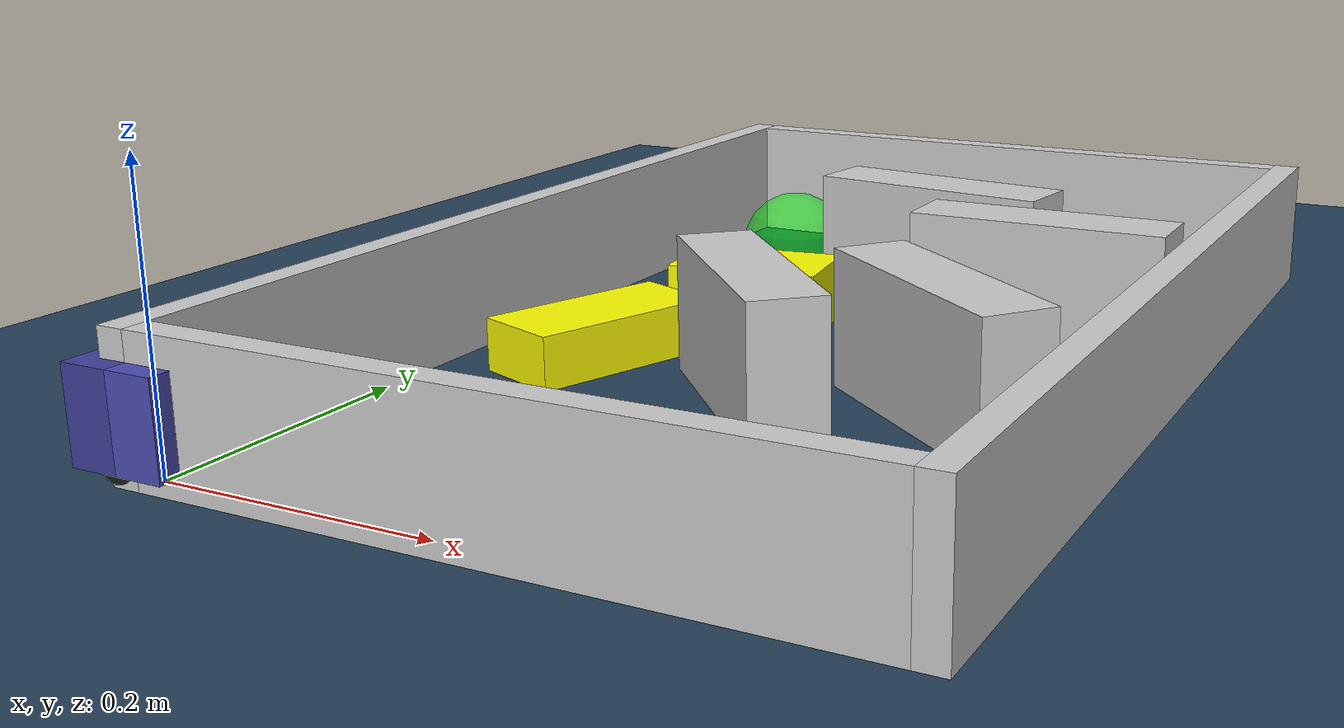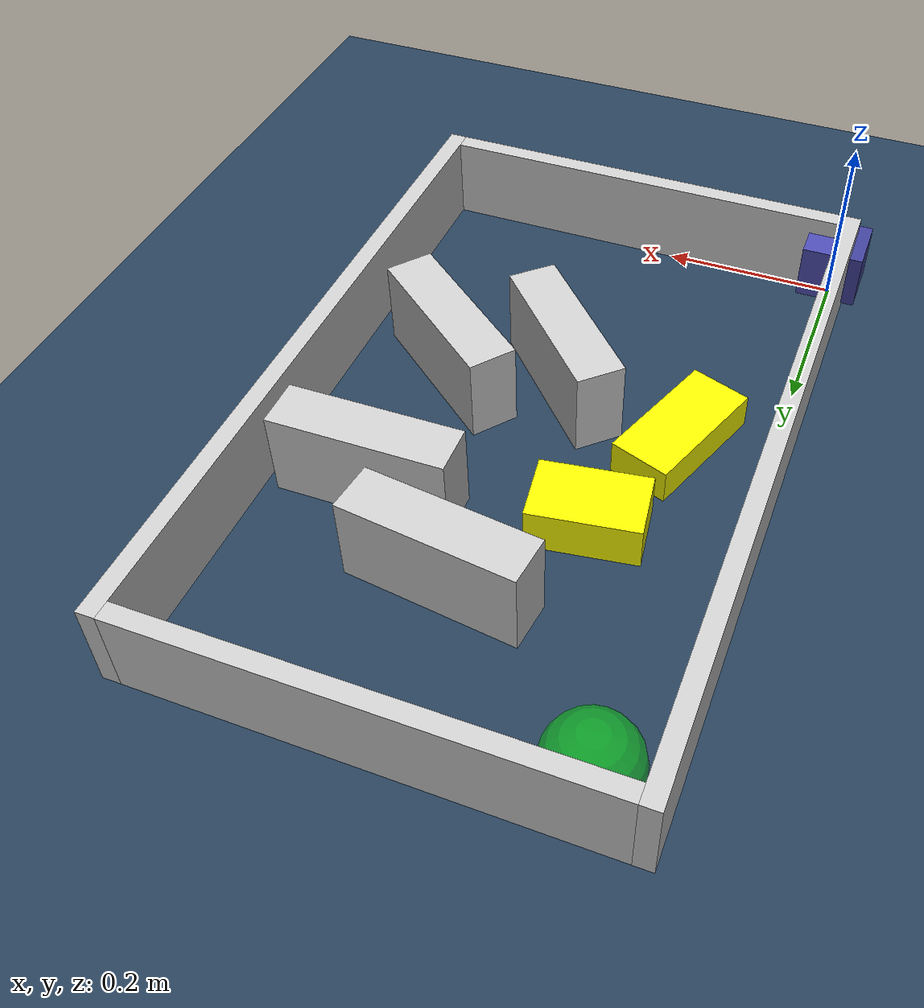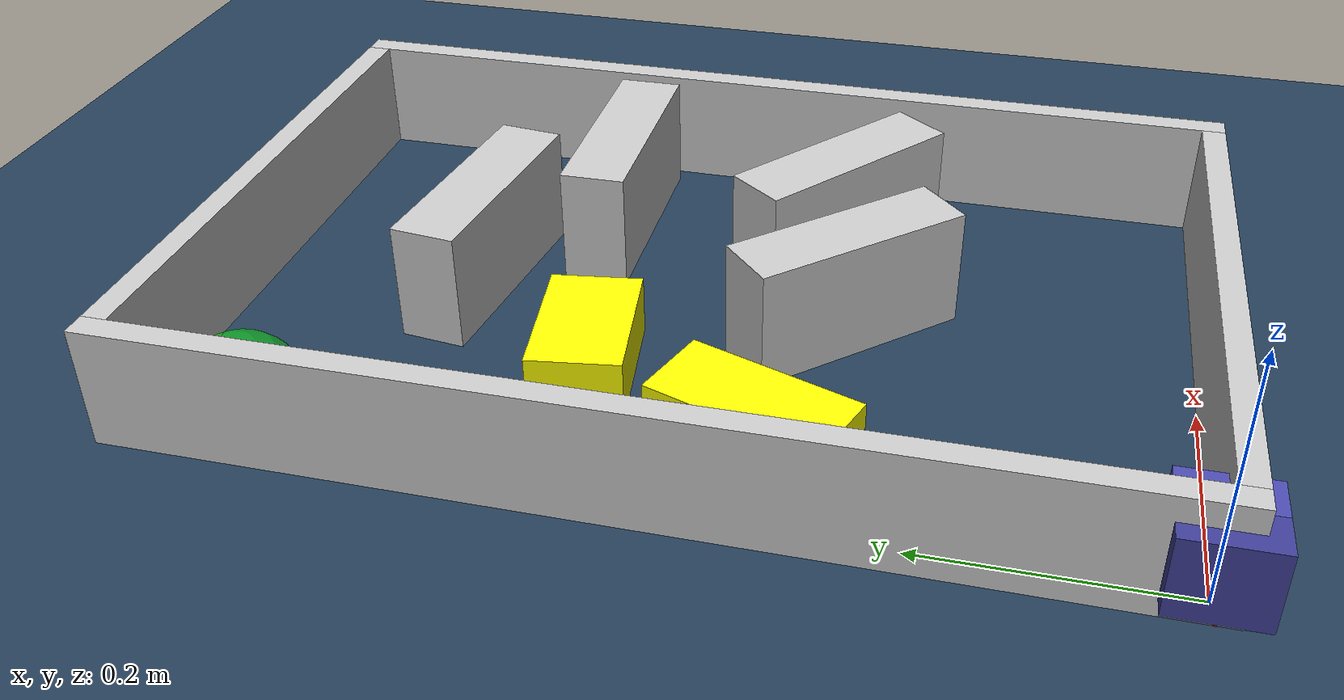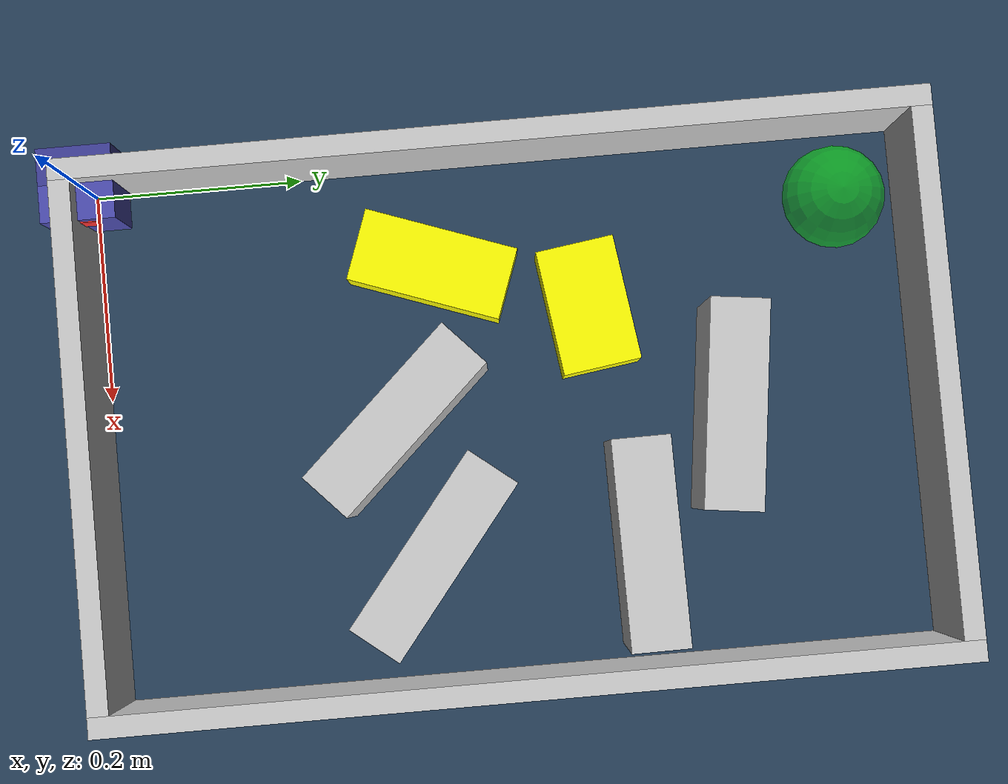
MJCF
<?xml version="1.0" ?>
<mujoco model="generated_environment">
  <option cone="elliptic" integrator="implicitfast" iterations="100" timestep="0.002"/>
  <default>
    <geom density="1"/>
  </default>
  <asset>
    <texture builtin="gradient" height="3072" rgb1="0.3 0.5 0.7" rgb2="0 0 0" type="skybox" width="512"/>
    <texture builtin="checker" height="300" mark="edge" markrgb="0.8 0.8 0.8" name="groundplane" rgb1="0.2 0.3 0.4" rgb2="0.1 0.2 0.3" type="2d" width="300"/>
    <material name="groundplane" reflectance="0.2" texrepeat="5 5" texture="groundplane" texuniform="true"/>
    <material name="robot" rgba="1.0 1.0 0.0 1.0"/>
  </asset>
  <include file="/home/dhruv/projects_dhruv/namo/namo_cpp/test_xml/little-car-modeling-package/assets/mjcf/little_car.xml"/>
  <worldbody>
    <light dir="0 0 -1" directional="true" pos="0 0 1.5"/>
    <geom condim="4" friction="0.5 0.005 0.001" material="groundplane" name="floor" size="0 0 0.05" type="plane"/>
    <body name="walls">
      <geom name="wall_1" condim="4" pos="-0.01 0.3875 0.05" friction="1 0.005 0.0001" rgba="0.800000011920929 0.800000011920929 0.800000011920929 1.0" size="0.01 0.40750000000000003 0.05" type="box"/>
      <geom name="wall_2" condim="4" pos="0.5 0.3875 0.05" friction="1 0.005 0.0001" rgba="0.800000011920929 0.800000011920929 0.800000011920929 1.0" size="0.01 0.40750000000000003 0.05" type="box"/>
      <geom name="wall_3" condim="4" pos="0.245 -0.01 0.05" friction="1 0.005 0.0001" rgba="0.800000011920929 0.800000011920929 0.800000011920929 1.0" size="0.245 0.01 0.05" type="box"/>
      <geom name="wall_4" condim="4" pos="0.245 0.785 0.05" friction="1 0.005 0.0001" rgba="0.800000011920929 0.800000011920929 0.800000011920929 1.0" size="0.245 0.01 0.05" type="box"/>
    </body>
    <body name="obstacle_1_movable">
      <geom name="obstacle_1_movable" condim="4" pos="0.0978686229827451 0.32263499234819887 0.02" quat="-0.9852265219963882 0 0 0.17125624179836607" friction="1 0.005 0.0001" rgba="1 1 0 1" size="0.035 0.075 0.02" type="box" mass="0.1"/>
      <joint type="free"/>
    </body>
    <body name="obstacle_2_movable">
      <geom name="obstacle_2_movable" condim="4" pos="0.15118942154464043 0.46719279505307854 0.025" quat="0.6549918069546153 0 0 0.7556359790417129" friction="1 0.005 0.0001" rgba="1 1 0 1" size="0.0375 0.06 0.025" type="box" mass="0.1"/>
      <joint type="free"/>
    </body>
    <body name="wall_5">
      <geom name="wall_5" condim="4" pos="0.25833581061635336 0.5910569877181904 0.05" quat="0.7490795793252654 0 0 0.6624800252368999" friction="1 0.005 0.0001" rgba="0.800000011920929 0.800000011920929 0.800000011920929 1.0" size="0.0275 0.0975 0.05" type="box"/>
    </body>
    <body name="wall_6">
      <geom name="wall_6" condim="4" pos="0.3723948232115382 0.3040979132695557 0.05" quat="-0.43642915824671863 0 0 0.8997386230634209" friction="1 0.005 0.0001" rgba="0.800000011920929 0.800000011920929 0.800000011920929 1.0" size="0.0275 0.0975 0.05" type="box"/>
    </body>
    <body name="wall_7">
      <geom name="wall_7" condim="4" pos="0.37798948049555847 0.5013832667956444 0.05" quat="0.7039388712440481 0 0 0.7102605617318587" friction="1 0.005 0.0001" rgba="0.800000011920929 0.800000011920929 0.800000011920929 1.0" size="0.0275 0.0975 0.05" type="box"/>
    </body>
    <body name="wall_8">
      <geom name="wall_8" condim="4" pos="0.24622111360725468 0.27880456195219044 0.05" quat="0.39657208996244014 0 0 0.9180035824891002" friction="1 0.005 0.0001" rgba="0.800000011920929 0.800000011920929 0.800000011920929 1.0" size="0.095 0.0275 0.05" type="box"/>
    </body>
    <site name="goal" type="sphere" size="0.05 0.05 0.05" rgba="0 1 0 0.5" pos="0.060502 0.718623 0.0"/>
  </worldbody>
</mujoco>

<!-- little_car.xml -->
<mujoco model="little_car">
  <compiler angle="radian" autolimits="true"/>
  <default>
    <geom condim="4"/>
    <joint damping="0.01" armature="0.0001"/>
  </default>
  <worldbody>
    <body name="car" pos="0 0 0.010000">
      <freejoint name="car_freejoint"/>
      <inertial pos="0.000000 0 0.037500" mass="0.350000"
                diaginertia="0.000266 0.000266 0.000286"/>
      <geom name="front_chassis_collision" type="box" pos="0.017500 0 0.037500"
            size="0.017500 0.035000 0.032500"
            rgba="0.3 0.3 0.7 1"/>
      <geom name="rear_chassis_collision" type="box" pos="-0.017500 0 0.037500"
            size="0.017500 0.035000 0.032500"
            rgba="0.25 0.25 0.6 1"/>
      <geom name="front_marker" type="box" pos="0.034000 0 0.050500"
            size="0.002000 0.015000 0.010000"
            rgba="1.0 0.2 0.2 1" contype="0" conaffinity="0"/>

      <body name="rear_support_body" pos="-0.030000 0.000000 0.002500">
        <joint name="rear_caster_joint" type="ball" damping="0.0001"/>
        <inertial pos="0 0 0" mass="0.025000"
                  diaginertia="0.000001 0.000001 0.000001"/>
        <geom name="rear_support" type="sphere"
              pos="0 0 0"
              size="0.002500"
              friction="0.000000 0.000000 0.000000"
              rgba="0.7 0.1 0.1 1"/>
      </body>

      <body name="front_support_body" pos="0.030000 0.000000 0.002500">
        <joint name="front_caster_joint" type="ball" damping="0.0001"/>
        <inertial pos="0 0 0" mass="0.025000"
                  diaginertia="0.000001 0.000001 0.000001"/>
        <geom name="front_support" type="sphere"
              pos="0 0 0"
              size="0.002500"
              friction="0.000000 0.000000 0.000000"
              rgba="0.1 0.7 0.1 1"/>
      </body>

      <body name="left_wheel" pos="0.000000 0.034000 0.015000">
        <inertial pos="0 0 0" mass="0.050000"
                  diaginertia="0.000003 0.000006 0.000003"/>
        <joint name="left_wheel_joint" type="hinge" axis="0 1 0"/>
        <geom name="left_wheel_collision" type="cylinder" size="0.015000 0.000500"
              euler="1.57079632679 0 0" rgba="0.1 0.1 0.1 1"/>
      </body>

      <body name="right_wheel" pos="0.000000 -0.034000 0.015000">
        <inertial pos="0 0 0" mass="0.050000"
                  diaginertia="0.000003 0.000006 0.000003"/>
        <joint name="right_wheel_joint" type="hinge" axis="0 1 0"/>
        <geom name="right_wheel_collision" type="cylinder" size="0.015000 0.000500"
              euler="1.57079632679 0 0" rgba="0.1 0.1 0.1 1"/>
      </body>
    </body>
  </worldbody>
  <contact>
    <exclude body1="car" body2="left_wheel"/>
    <exclude body1="car" body2="right_wheel"/>
  </contact>
  <actuator>
    <velocity name="left_wheel_drive" joint="left_wheel_joint"
              ctrlrange="-25.000000 25.000000"
              kv="0.750000" forcerange="-0.500000 0.500000"/>
    <velocity name="right_wheel_drive" joint="right_wheel_joint"
              ctrlrange="-25.000000 25.000000"
              kv="0.750000" forcerange="-0.500000 0.500000"/>
  </actuator>
</mujoco>
